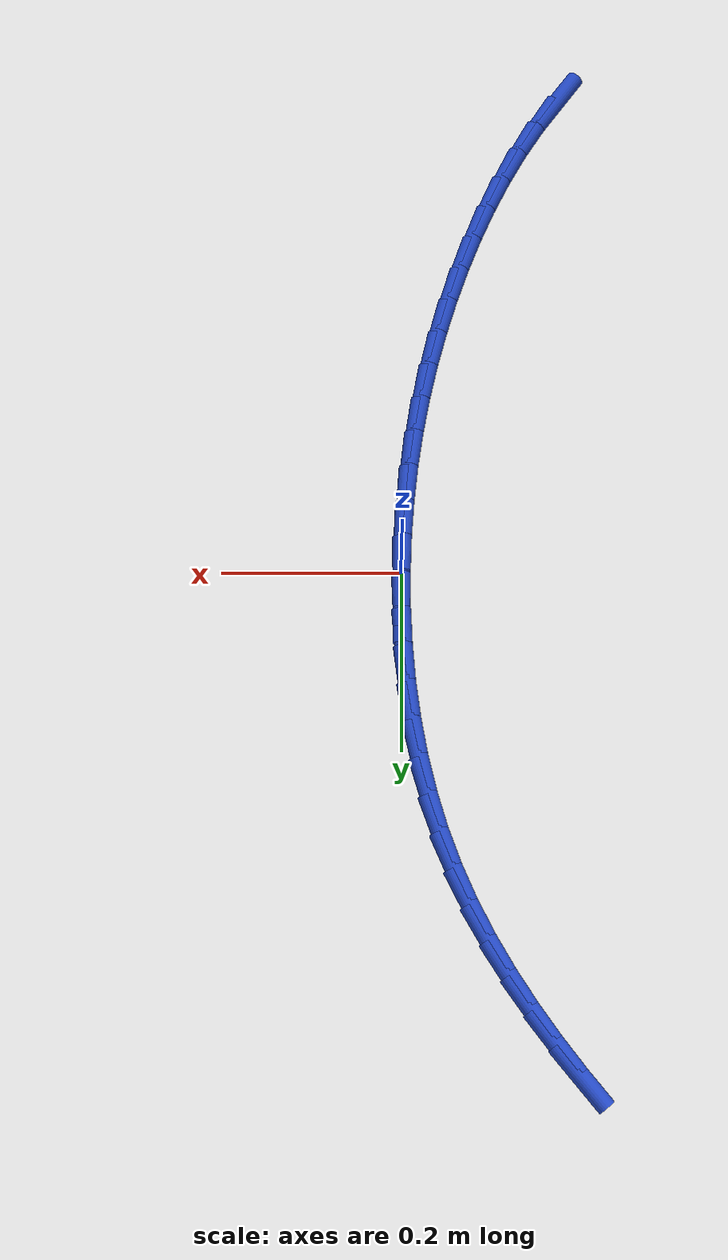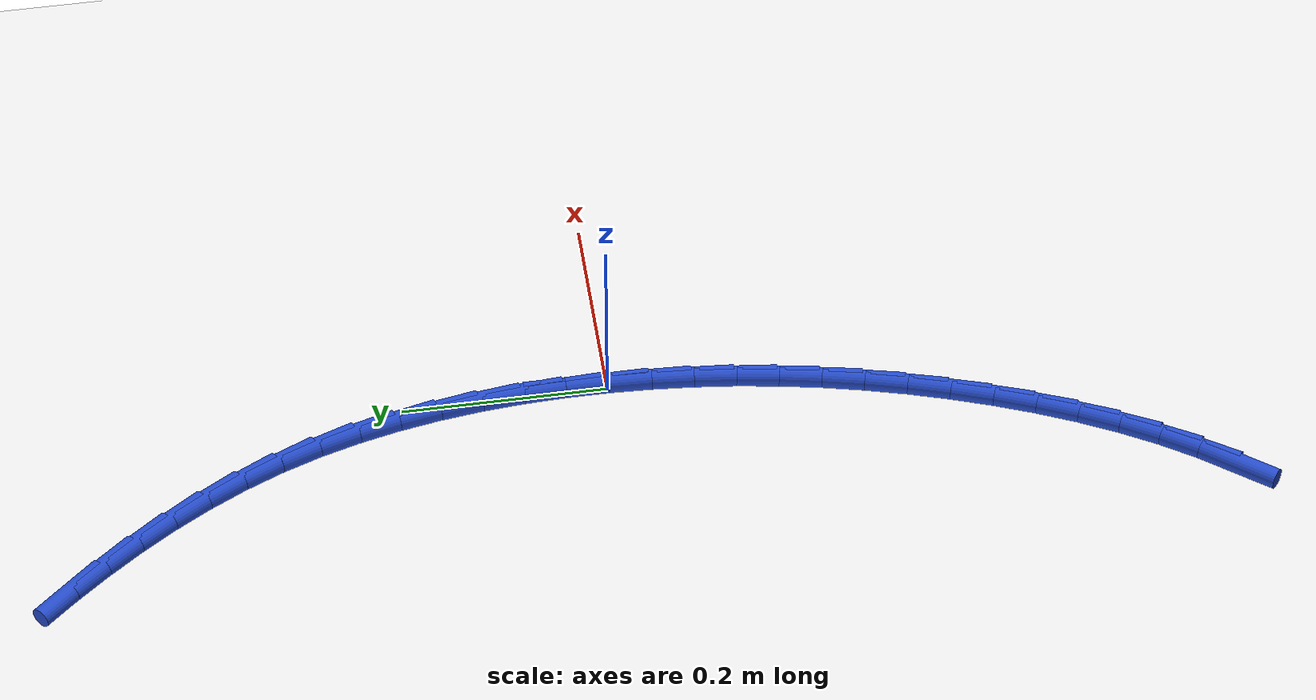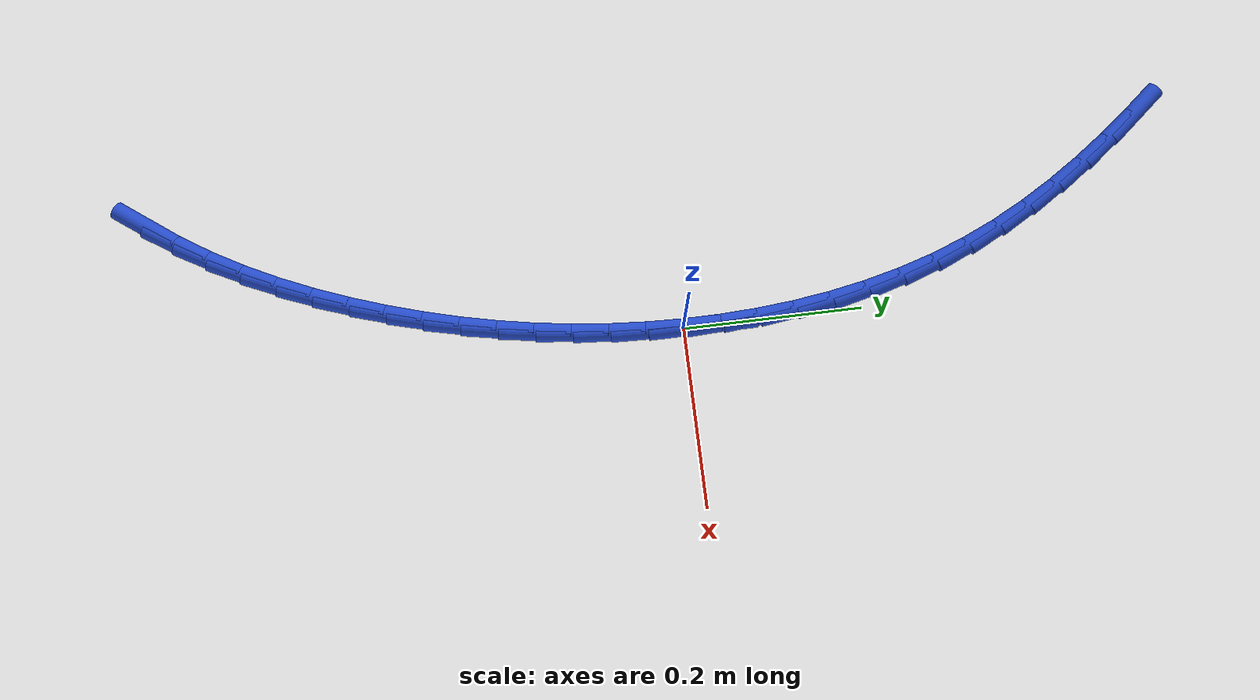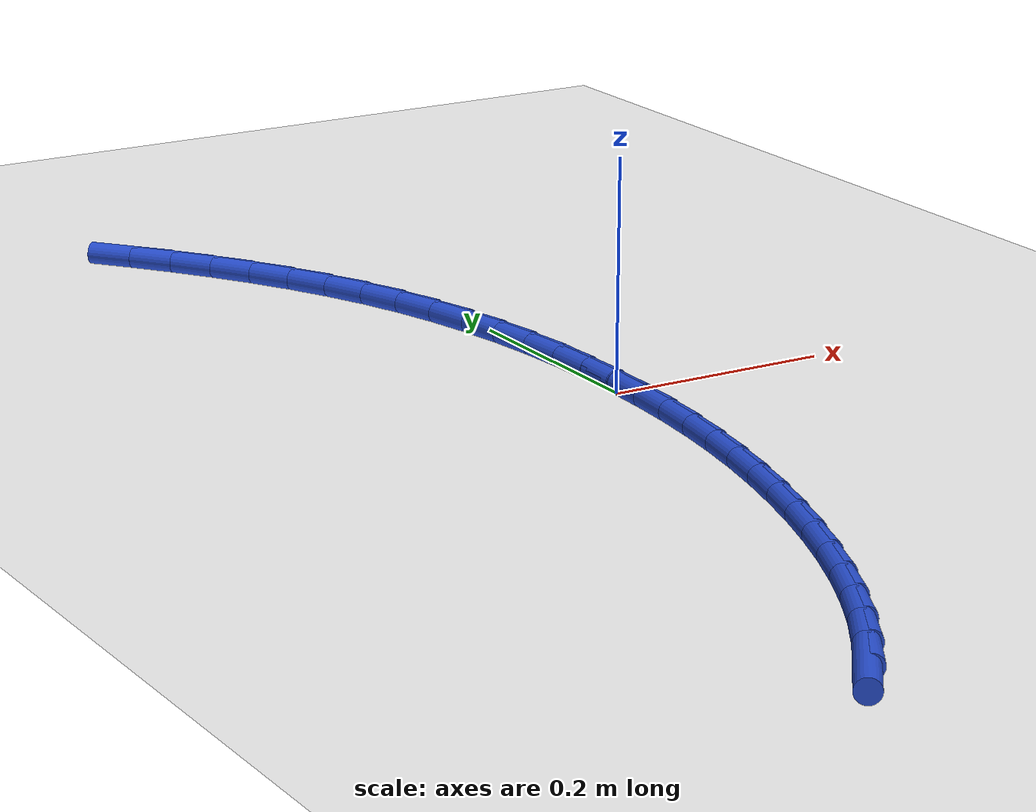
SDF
<sdf version="1.6">
 <world name="default">
  <model name="ground_plane">
   <static>1</static>
   <link name="link">
    <collision name="collision">
     <geometry><plane><normal>0 0 1</normal><size>100 100</size></plane></geometry>
     <surface><friction><ode><mu>100</mu><mu2>50</mu2></ode></friction></surface>
    </collision>
    <visual name="visual">
     <cast_shadows>0</cast_shadows>
     <geometry><plane><normal>0 0 1</normal><size>100 100</size></plane></geometry>
     <material>
      <script><uri>file://media/materials/scripts/gazebo.material</uri><name>Gazebo/WhiteGlow</name></script>
     </material>
    </visual>
   </link>
  </model>
  <model name="line">
   <link name="link_0">
    <pose>-1.6479873021779667e-17 -8.326672684688674e-17 0.01 0 1.57 -1.566414731328799</pose>
    <collision name="collision">
     <geometry><cylinder><radius>0.01</radius><length>0.08</length></cylinder></geometry>
    </collision>
    <visual name="visual">
     <material>
      <script><name>Gazebo/Blue</name><uri>file://media/materials/scripts/gazebo.material</uri></script>
     </material>
     <geometry><cylinder><radius>0.01</radius><length>0.08</length></cylinder></geometry>
    </visual>
   </link>
   <link name="link_1">
    <pose>-0.00018184845922349167 0.04150252959159567 0.01 0 1.57 -1.5263534469862161</pose>
    <collision name="collision">
     <geometry><cylinder><radius>0.01</radius><length>0.08</length></cylinder></geometry>
    </collision>
    <visual name="visual">
     <material>
      <script><name>Gazebo/Blue</name><uri>file://media/materials/scripts/gazebo.material</uri></script>
     </material>
     <geometry><cylinder><radius>0.01</radius><length>0.08</length></cylinder></geometry>
    </visual>
   </link>
   <link name="link_2">
    <pose>-0.002030293858694147 0.08306662826030879 0.01 0 1.57 -1.4835779898202277</pose>
    <collision name="collision">
     <geometry><cylinder><radius>0.01</radius><length>0.08</length></cylinder></geometry>
    </collision>
    <visual name="visual">
     <material>
      <script><name>Gazebo/Blue</name><uri>file://media/materials/scripts/gazebo.material</uri></script>
     </material>
     <geometry><cylinder><radius>0.01</radius><length>0.08</length></cylinder></geometry>
    </visual>
   </link>
   <link name="link_3">
    <pose>-0.005656570394167152 0.12453814582838611 0.01 0 1.57 -1.4377990456804615</pose>
    <collision name="collision">
     <geometry><cylinder><radius>0.01</radius><length>0.08</length></cylinder></geometry>
    </collision>
    <visual name="visual">
     <material>
      <script><name>Gazebo/Blue</name><uri>file://media/materials/scripts/gazebo.material</uri></script>
     </material>
     <geometry><cylinder><radius>0.01</radius><length>0.08</length></cylinder></geometry>
    </visual>
   </link>
   <link name="link_4">
    <pose>-0.011171912261397684 0.16576293211807444 0.01 0 1.57 -1.388735852787313</pose>
    <collision name="collision">
     <geometry><cylinder><radius>0.01</radius><length>0.08</length></cylinder></geometry>
    </collision>
    <visual name="visual">
     <material>
      <script><name>Gazebo/Blue</name><uri>file://media/materials/scripts/gazebo.material</uri></script>
     </material>
     <geometry><cylinder><radius>0.01</radius><length>0.08</length></cylinder></geometry>
    </visual>
   </link>
   <link name="link_5">
    <pose>-0.018687553656140922 0.2065868369516207 0.01 0 1.57 -1.336128635197611</pose>
    <collision name="collision">
     <geometry><cylinder><radius>0.01</radius><length>0.08</length></cylinder></geometry>
    </collision>
    <visual name="visual">
     <material>
      <script><name>Gazebo/Blue</name><uri>file://media/materials/scripts/gazebo.material</uri></script>
     </material>
     <geometry><cylinder><radius>0.01</radius><length>0.08</length></cylinder></geometry>
    </visual>
   </link>
   <link name="link_6">
    <pose>-0.02831472877415203 0.2468557101512717 0.01 0 1.57 -1.2797561973764093</pose>
    <collision name="collision">
     <geometry><cylinder><radius>0.01</radius><length>0.08</length></cylinder></geometry>
    </collision>
    <visual name="visual">
     <material>
      <script><name>Gazebo/Blue</name><uri>file://media/materials/scripts/gazebo.material</uri></script>
     </material>
     <geometry><cylinder><radius>0.01</radius><length>0.08</length></cylinder></geometry>
    </visual>
   </link>
   <link name="link_7">
    <pose>-0.04016467181118619 0.28641540153927414 0.01 0 1.57 -1.219459057804905</pose>
    <collision name="collision">
     <geometry><cylinder><radius>0.01</radius><length>0.08</length></cylinder></geometry>
    </collision>
    <visual name="visual">
     <material>
      <script><name>Gazebo/Blue</name><uri>file://media/materials/scripts/gazebo.material</uri></script>
     </material>
     <geometry><cylinder><radius>0.01</radius><length>0.08</length></cylinder></geometry>
    </visual>
   </link>
   <link name="link_8">
    <pose>-0.05434861689962701 0.32511176098188793 0.01 0 1.57 -1.156680159206354</pose>
    <collision name="collision">
     <geometry><cylinder><radius>0.01</radius><length>0.08</length></cylinder></geometry>
    </collision>
    <visual name="visual">
     <material>
      <script><name>Gazebo/Blue</name><uri>file://media/materials/scripts/gazebo.material</uri></script>
     </material>
     <geometry><cylinder><radius>0.01</radius><length>0.08</length></cylinder></geometry>
    </visual>
   </link>
   <link name="link_9">
    <pose>-0.0709256679759595 0.36282684371516394 0.01 0 1.57 -1.0974165975322892</pose>
    <collision name="collision">
     <geometry><cylinder><radius>0.01</radius><length>0.08</length></cylinder></geometry>
    </collision>
    <visual name="visual">
     <material>
      <script><name>Gazebo/Blue</name><uri>file://media/materials/scripts/gazebo.material</uri></script>
     </material>
     <geometry><cylinder><radius>0.01</radius><length>0.08</length></cylinder></geometry>
    </visual>
   </link>
   <link name="link_10">
    <pose>-0.08975304760563364 0.39958291526146383 0.01 0 1.57 -1.0433117421562952</pose>
    <collision name="collision">
     <geometry><cylinder><radius>0.01</radius><length>0.08</length></cylinder></geometry>
    </collision>
    <visual name="visual">
     <material>
      <script><name>Gazebo/Blue</name><uri>file://media/materials/scripts/gazebo.material</uri></script>
     </material>
     <geometry><cylinder><radius>0.01</radius><length>0.08</length></cylinder></geometry>
    </visual>
   </link>
   <link name="link_11">
    <pose>-0.11063911534300795 0.43543617739363144 0.01 0 1.57 -0.9944454056509866</pose>
    <collision name="collision">
     <geometry><cylinder><radius>0.01</radius><length>0.08</length></cylinder></geometry>
    </collision>
    <visual name="visual">
     <material>
      <script><name>Gazebo/Blue</name><uri>file://media/materials/scripts/gazebo.material</uri></script>
     </material>
     <geometry><cylinder><radius>0.01</radius><length>0.08</length></cylinder></geometry>
    </visual>
   </link>
   <link name="link_12">
    <pose>-0.13339223074244103 0.4704428318845107 0.01 0 1.57 -0.9507724273365723</pose>
    <collision name="collision">
     <geometry><cylinder><radius>0.01</radius><length>0.08</length></cylinder></geometry>
    </collision>
    <visual name="visual">
     <material>
      <script><name>Gazebo/Blue</name><uri>file://media/materials/scripts/gazebo.material</uri></script>
     </material>
     <geometry><cylinder><radius>0.01</radius><length>0.08</length></cylinder></geometry>
    </visual>
   </link>
   <link name="link_13">
    <pose>-0.15782075335829152 0.504659080506945 0.01 0 1.57 -0.9121638603867378</pose>
    <collision name="collision">
     <geometry><cylinder><radius>0.01</radius><length>0.08</length></cylinder></geometry>
    </collision>
    <visual name="visual">
     <material>
      <script><name>Gazebo/Blue</name><uri>file://media/materials/scripts/gazebo.material</uri></script>
     </material>
     <geometry><cylinder><radius>0.01</radius><length>0.08</length></cylinder></geometry>
    </visual>
   </link>
   <link name="link_14">
    <pose>-0.18373304274491778 0.5381411250337782 0.01 0 1.57 -0.8784426802892685</pose>
    <collision name="collision">
     <geometry><cylinder><radius>0.01</radius><length>0.08</length></cylinder></geometry>
    </collision>
    <visual name="visual">
     <material>
      <script><name>Gazebo/Blue</name><uri>file://media/materials/scripts/gazebo.material</uri></script>
     </material>
     <geometry><cylinder><radius>0.01</radius><length>0.08</length></cylinder></geometry>
    </visual>
   </link>
   <link name="link_175">
    <pose>-0.1854382796890257 -0.584276406693728 0.01 0 1.57 0.9372876373788569</pose>
    <collision name="collision">
     <geometry><cylinder><radius>0.01</radius><length>0.08</length></cylinder></geometry>
    </collision>
    <visual name="visual">
     <material>
      <script><name>Gazebo/Blue</name><uri>file://media/materials/scripts/gazebo.material</uri></script>
     </material>
     <geometry><cylinder><radius>0.01</radius><length>0.08</length></cylinder></geometry>
    </visual>
   </link>
   <link name="link_176">
    <pose>-0.16137171157453248 -0.5515105971515776 0.01 0 1.57 1.0014686074938839</pose>
    <collision name="collision">
     <geometry><cylinder><radius>0.01</radius><length>0.08</length></cylinder></geometry>
    </collision>
    <visual name="visual">
     <material>
      <script><name>Gazebo/Blue</name><uri>file://media/materials/scripts/gazebo.material</uri></script>
     </material>
     <geometry><cylinder><radius>0.01</radius><length>0.08</length></cylinder></geometry>
    </visual>
   </link>
   <link name="link_177">
    <pose>-0.13918242852438037 -0.5168409517678683 0.01 0 1.57 1.0591923167111061</pose>
    <collision name="collision">
     <geometry><cylinder><radius>0.01</radius><length>0.08</length></cylinder></geometry>
    </collision>
    <visual name="visual">
     <material>
      <script><name>Gazebo/Blue</name><uri>file://media/materials/scripts/gazebo.material</uri></script>
     </material>
     <geometry><cylinder><radius>0.01</radius><length>0.08</length></cylinder></geometry>
    </visual>
   </link>
   <link name="link_178">
    <pose>-0.1188111952086328 -0.48055876241836154 0.01 0 1.57 1.1111841513840388</pose>
    <collision name="collision">
     <geometry><cylinder><radius>0.01</radius><length>0.08</length></cylinder></geometry>
    </collision>
    <visual name="visual">
     <material>
      <script><name>Gazebo/Blue</name><uri>file://media/materials/scripts/gazebo.material</uri></script>
     </material>
     <geometry><cylinder><radius>0.01</radius><length>0.08</length></cylinder></geometry>
    </visual>
   </link>
   <link name="link_179">
    <pose>-0.10019877629735344 -0.4429553209788184 0.01 0 1.57 1.1581528639558596</pose>
    <collision name="collision">
     <geometry><cylinder><radius>0.01</radius><length>0.08</length></cylinder></geometry>
    </collision>
    <visual name="visual">
     <material>
      <script><name>Gazebo/Blue</name><uri>file://media/materials/scripts/gazebo.material</uri></script>
     </material>
     <geometry><cylinder><radius>0.01</radius><length>0.08</length></cylinder></geometry>
    </visual>
   </link>
   <link name="link_180">
    <pose>-0.08328593646060478 -0.40432191932499817 0.01 0 1.57 1.2007627575222801</pose>
    <collision name="collision">
     <geometry><cylinder><radius>0.01</radius><length>0.08</length></cylinder></geometry>
    </collision>
    <visual name="visual">
     <material>
      <script><name>Gazebo/Blue</name><uri>file://media/materials/scripts/gazebo.material</uri></script>
     </material>
     <geometry><cylinder><radius>0.01</radius><length>0.08</length></cylinder></geometry>
    </visual>
   </link>
   <link name="link_181">
    <pose>-0.06801344036845067 -0.36494984933266233 0.01 0 1.57 1.2396227005841014</pose>
    <collision name="collision">
     <geometry><cylinder><radius>0.01</radius><length>0.08</length></cylinder></geometry>
    </collision>
    <visual name="visual">
     <material>
      <script><name>Gazebo/Blue</name><uri>file://media/materials/scripts/gazebo.material</uri></script>
     </material>
     <geometry><cylinder><radius>0.01</radius><length>0.08</length></cylinder></geometry>
    </visual>
   </link>
   <link name="link_182">
    <pose>-0.054322052690954394 -0.3251304028775716 0.01 0 1.57 1.2758560217932906</pose>
    <collision name="collision">
     <geometry><cylinder><radius>0.01</radius><length>0.08</length></cylinder></geometry>
    </collision>
    <visual name="visual">
     <material>
      <script><name>Gazebo/Blue</name><uri>file://media/materials/scripts/gazebo.material</uri></script>
     </material>
     <geometry><cylinder><radius>0.01</radius><length>0.08</length></cylinder></geometry>
    </visual>
   </link>
   <link name="link_183">
    <pose>-0.042162783762007265 -0.28510660978831925 0.01 0 1.57 1.3121014047170299</pose>
    <collision name="collision">
     <geometry><cylinder><radius>0.01</radius><length>0.08</length></cylinder></geometry>
    </collision>
    <visual name="visual">
     <material>
      <script><name>Gazebo/Blue</name><uri>file://media/materials/scripts/gazebo.material</uri></script>
     </material>
     <geometry><cylinder><radius>0.01</radius><length>0.08</length></cylinder></geometry>
    </visual>
   </link>
   <link name="link_184">
    <pose>-0.031528974680931576 -0.24492210145215262 0.01 0 1.57 1.3489009116009967</pose>
    <collision name="collision">
     <geometry><cylinder><radius>0.01</radius><length>0.08</length></cylinder></geometry>
    </collision>
    <visual name="visual">
     <material>
      <script><name>Gazebo/Blue</name><uri>file://media/materials/scripts/gazebo.material</uri></script>
     </material>
     <geometry><cylinder><radius>0.01</radius><length>0.08</length></cylinder></geometry>
    </visual>
   </link>
   <link name="link_185">
    <pose>-0.022424897278712087 -0.2045690202072996 0.01 0 1.57 1.3861446904757693</pose>
    <collision name="collision">
     <geometry><cylinder><radius>0.01</radius><length>0.08</length></cylinder></geometry>
    </collision>
    <visual name="visual">
     <material>
      <script><name>Gazebo/Blue</name><uri>file://media/materials/scripts/gazebo.material</uri></script>
     </material>
     <geometry><cylinder><radius>0.01</radius><length>0.08</length></cylinder></geometry>
    </visual>
   </link>
   <link name="link_186">
    <pose>-0.014854823399621589 -0.16403950832939715 0.01 0 1.57 1.4237149814875565</pose>
    <collision name="collision">
     <geometry><cylinder><radius>0.01</radius><length>0.08</length></cylinder></geometry>
    </collision>
    <visual name="visual">
     <material>
      <script><name>Gazebo/Blue</name><uri>file://media/materials/scripts/gazebo.material</uri></script>
     </material>
     <geometry><cylinder><radius>0.01</radius><length>0.08</length></cylinder></geometry>
    </visual>
   </link>
   <link name="link_187">
    <pose>-0.008823024887932395 -0.12332570809407951 0.01 0 1.57 1.461488076686601</pose>
    <collision name="collision">
     <geometry><cylinder><radius>0.01</radius><length>0.08</length></cylinder></geometry>
    </collision>
    <visual name="visual">
     <material>
      <script><name>Gazebo/Blue</name><uri>file://media/materials/scripts/gazebo.material</uri></script>
     </material>
     <geometry><cylinder><radius>0.01</radius><length>0.08</length></cylinder></geometry>
    </visual>
   </link>
   <link name="link_188">
    <pose>-0.004333773587917311 -0.08241976177698349 0.01 0 1.57 1.499336549814863</pose>
    <collision name="collision">
     <geometry><cylinder><radius>0.01</radius><length>0.08</length></cylinder></geometry>
    </collision>
    <visual name="visual">
     <material>
      <script><name>Gazebo/Blue</name><uri>file://media/materials/scripts/gazebo.material</uri></script>
     </material>
     <geometry><cylinder><radius>0.01</radius><length>0.08</length></cylinder></geometry>
    </visual>
   </link>
   <link name="link_189">
    <pose>-0.001391341343848977 -0.041313811653745015 0.01 0 1.57 1.5371316601484997</pose>
    <collision name="collision">
     <geometry><cylinder><radius>0.01</radius><length>0.08</length></cylinder></geometry>
    </collision>
    <visual name="visual">
     <material>
      <script><name>Gazebo/Blue</name><uri>file://media/materials/scripts/gazebo.material</uri></script>
     </material>
     <geometry><cylinder><radius>0.01</radius><length>0.08</length></cylinder></geometry>
    </visual>
   </link>
   <link name="link_190">
    <pose>-1.9081958235744878e-17 -1.0408340855860843e-16 0.01 0 1.57 -1.5668468348496456</pose>
    <collision name="collision">
     <geometry><cylinder><radius>0.01</radius><length>0.08</length></cylinder></geometry>
    </collision>
    <visual name="visual">
     <material>
      <script><name>Gazebo/Blue</name><uri>file://media/materials/scripts/gazebo.material</uri></script>
     </material>
     <geometry><cylinder><radius>0.01</radius><length>0.08</length></cylinder></geometry>
    </visual>
   </link>
   <link name="link_191">
    <pose>-0.0001640214006430763 0.041529530908615324 0.01 0 1.57 -1.5668468348496456</pose>
    <collision name="collision">
     <geometry><cylinder><radius>0.01</radius><length>0.08</length></cylinder></geometry>
    </collision>
    <visual name="visual">
     <material>
      <script><name>Gazebo/Blue</name><uri>file://media/materials/scripts/gazebo.material</uri></script>
     </material>
     <geometry><cylinder><radius>0.01</radius><length>0.08</length></cylinder></geometry>
    </visual>
   </link>
  </model>
 </world>
</sdf>
